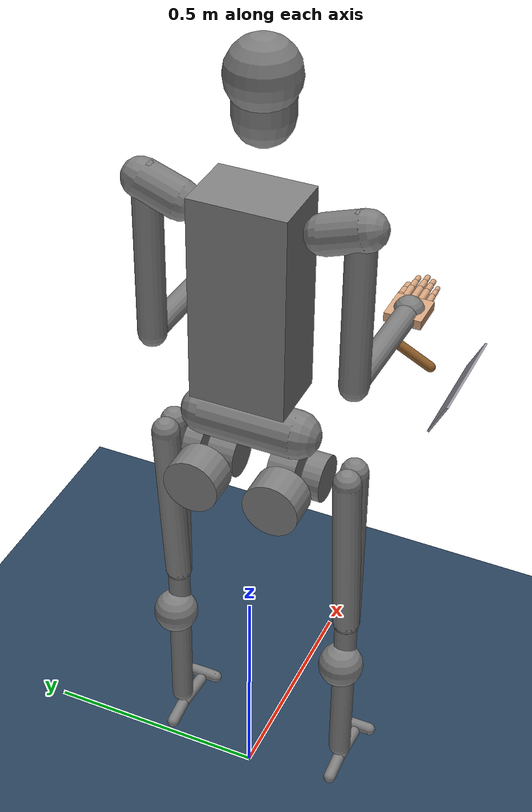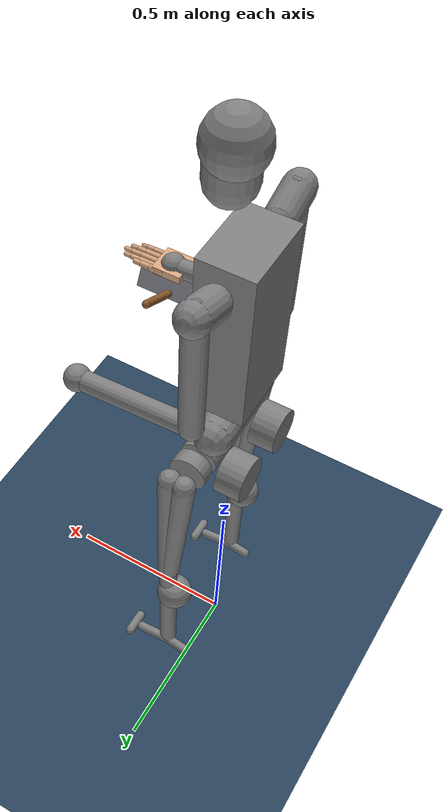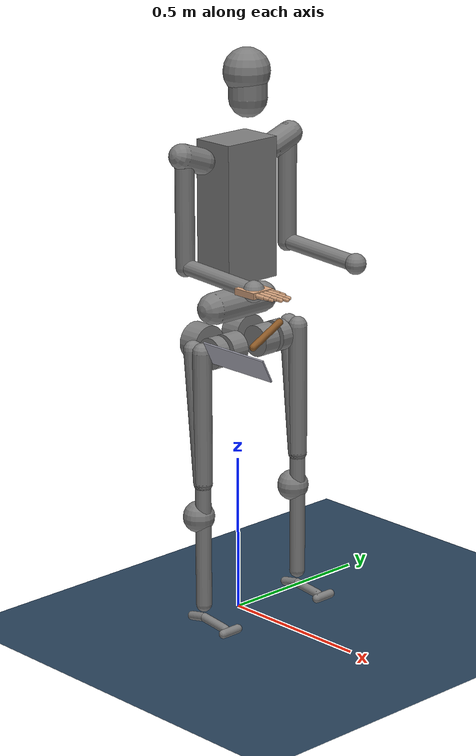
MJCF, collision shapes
<mujoco model="h1_hand scene">
  <include file="h1_hand.xml"/>

  <statistic center="0 0 1" extent="1.8"/>

  <visual>
    <headlight diffuse="0.6 0.6 0.6" ambient="0.3 0.3 0.3" specular="0 0 0"/>
    <rgba haze="0.15 0.25 0.35 1"/>
    <global azimuth="160" elevation="-20"/>
  </visual>

  <asset>
    <texture type="skybox" builtin="gradient" rgb1="0.3 0.5 0.7" rgb2="0 0 0" width="512" height="3072"/>
    <texture type="2d" name="groundplane" builtin="checker" mark="edge" rgb1="0.2 0.3 0.4" rgb2="0.1 0.2 0.3"
      markrgb="0.8 0.8 0.8" width="300" height="300"/>
    <material name="groundplane" texture="groundplane" texuniform="true" texrepeat="5 5" reflectance="0.2"/>
    <material name="steel" rgba="0.6 0.6 0.65 1"/>
    <material name="wood"  rgba="0.55 0.35 0.15 1"/>
  </asset>

  <worldbody>
    <light pos="0 0 3.5" dir="0 0 -1" directional="true"/>
    <geom name="floor" size="0 0 0.05" type="plane" material="groundplane"/>

    <!-- Trowel — handle along world -Y (euler 90 0 0 maps local Z → world -Y)
         pos chosen so handle center sits at palm Y center, 2cm below palm Z -->
    <body name="trowel" pos="0.34 -0.149 1.052" euler="90 0 0">
      <freejoint/>
      <geom name="trowel_handle" type="capsule" fromto="0 0 0 0 0 0.12" size="0.011"
            material="wood" friction="1.5 0.1 0.1" condim="4" mass="0.15"/>
      <geom name="trowel_blade" type="box" size="0.125 0.04 0.0025"
            pos="0 0 0.19" material="steel" mass="0.25"/>
    </body>
  </worldbody>

  <!-- 48 qpos: H1 freejoint(7) + H1 joints(19) + finger joints(15=zeros) + trowel freejoint(7) -->
  <keyframe>
    <key name="home"
         qpos="0 0 0.98 1 0 0 0
               0 0 -0.4 0.8 -0.4 0 0 -0.4 0.8 -0.4 0 0 0 0 0 0 0 0 0
               0 0 0 0 0 0 0 0 0 0 0 0 0 0 0
               0.34 -0.149 1.052 0.707 0.707 0 0"/>
  </keyframe>
</mujoco>

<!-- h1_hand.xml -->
<mujoco model="h1_hand">
  <compiler angle="radian" meshdir="../h1/assets" autolimits="true"/>

  <statistic meansize="0.05"/>

  <default>
    <default class="h1">
      <joint damping="1" armature="0.1"/>
      <default class="visual">
        <geom type="mesh" contype="0" conaffinity="0" group="2" material="black"/>
      </default>
      <default class="collision">
        <geom group="3" mass="0" density="0"/>
        <default class="foot">
          <geom type="capsule" size=".014"/>
          <default class="foot1">
            <geom fromto="-.035 0 -0.056 .02 0 -0.045"/>
          </default>
          <default class="foot2">
            <geom fromto=".02 0 -0.045 .115 0 -0.056"/>
          </default>
          <default class="foot3">
            <geom fromto=".14 -.03 -0.056 .14 .03 -0.056"/>
          </default>
        </default>
      </default>
      <site size="0.001" rgba="0.5 0.5 0.5 0.3" group="4"/>
    </default>
  </default>

  <asset>
    <material name="black" rgba="0.1 0.1 0.1 1"/>
    <material name="white" rgba="1 1 1 1"/>

    <mesh file="pelvis.stl"/>
    <mesh file="left_hip_yaw_link.stl"/>
    <mesh file="left_hip_roll_link.stl"/>
    <mesh file="left_hip_pitch_link.stl"/>
    <mesh file="left_knee_link.stl"/>
    <mesh file="left_ankle_link.stl"/>
    <mesh file="right_hip_yaw_link.stl"/>
    <mesh file="right_hip_roll_link.stl"/>
    <mesh file="right_hip_pitch_link.stl"/>
    <mesh file="right_knee_link.stl"/>
    <mesh file="right_ankle_link.stl"/>
    <mesh file="torso_link.stl"/>
    <mesh file="left_shoulder_pitch_link.stl"/>
    <mesh file="left_shoulder_roll_link.stl"/>
    <mesh file="left_shoulder_yaw_link.stl"/>
    <mesh file="left_elbow_link.stl"/>
    <mesh file="right_shoulder_pitch_link.stl"/>
    <mesh file="right_shoulder_roll_link.stl"/>
    <mesh file="right_shoulder_yaw_link.stl"/>
    <mesh file="right_elbow_link.stl"/>
    <mesh file="logo_link.stl"/>
  </asset>

  <worldbody>
    <light mode="targetbodycom" target="torso_link" pos="2 0 2.5"/>
    <body name="pelvis" pos="0 0 1.06" childclass="h1">
      <inertial pos="-0.0002 4e-05 -0.04522" quat="0.498303 0.499454 -0.500496 0.501741" mass="5.39"
        diaginertia="0.0490211 0.0445821 0.00824619"/>
      <freejoint/>
      <geom class="visual" mesh="pelvis"/>
      <body name="left_hip_yaw_link" pos="0 0.0875 -0.1742">
        <inertial pos="-0.04923 0.0001 0.0072" quat="0.69699 0.219193 0.233287 0.641667" mass="2.244"
          diaginertia="0.00304494 0.00296885 0.00189201"/>
        <joint name="left_hip_yaw" axis="0 0 1" range="-0.43 0.43"/>
        <geom class="visual" mesh="left_hip_yaw_link"/>
        <geom size="0.06 0.035" pos="-0.067 0 0" quat="0.707123 0 0.70709 0" type="cylinder" class="collision"/>
        <body name="left_hip_roll_link" pos="0.039468 0 0">
          <inertial pos="-0.0058 -0.00319 -9e-05" quat="0.0438242 0.70721 -0.0729075 0.701867" mass="2.232"
            diaginertia="0.00243264 0.00225325 0.00205492"/>
          <joint name="left_hip_roll" axis="1 0 0" range="-0.43 0.43"/>
          <geom class="visual" mesh="left_hip_roll_link"/>
          <geom class="collision" type="cylinder" size="0.05 0.03" quat="1 1 0 0" pos="0 -0.02 0"/>
          <body name="left_hip_pitch_link" pos="0 0.11536 0">
            <inertial pos="0.00746 -0.02346 -0.08193" quat="0.979828 0.0513522 -0.0169854 -0.192382" mass="4.152"
              diaginertia="0.0829503 0.0821457 0.00510909"/>
            <joint name="left_hip_pitch" axis="0 1 0" range="-1.57 1.57"/>
            <geom class="visual" mesh="left_hip_pitch_link"/>
            <geom class="collision" type="capsule" size="0.03" fromto="0.02 0 -0.4 -0.02 0 0.02"/>
            <geom class="collision" type="capsule" size="0.03" fromto="0.02 0 -0.4 0.02 0 0.02"/>
            <geom class="collision" type="cylinder" size="0.05 0.02" quat="1 1 0 0" pos="0 -0.07 0"/>
            <body name="left_knee_link" pos="0 0 -0.4">
              <inertial pos="-0.00136 -0.00512 -0.1384" quat="0.626132 -0.034227 -0.0416277 0.777852" mass="1.721"
                diaginertia="0.0125237 0.0123104 0.0019428"/>
              <joint name="left_knee" axis="0 1 0" range="-0.26 2.05"/>
              <geom class="visual" mesh="left_knee_link"/>
              <geom class="collision" type="capsule" size="0.025" fromto="0.02 0 -0.4 0.02 0 0"/>
              <geom class="collision" type="sphere" size="0.05" pos="0 0 -0.115"/>
              <body name="left_ankle_link" pos="0 0 -0.4">
                <inertial pos="0.06722 0.00015 -0.04497" quat="0.489101 0.503197 0.565782 0.432972" mass="0.446"
                  diaginertia="0.00220848 0.00218961 0.000214202"/>
                <joint name="left_ankle" axis="0 1 0" range="-0.87 0.52"/>
                <geom class="visual" mesh="left_ankle_link"/>
                <geom class="foot1"/>
                <geom class="foot2"/>
                <geom class="foot3"/>
              </body>
            </body>
          </body>
        </body>
      </body>
      <body name="right_hip_yaw_link" pos="0 -0.0875 -0.1742">
        <inertial pos="-0.04923 -0.0001 0.0072" quat="0.641667 0.233287 0.219193 0.69699" mass="2.244"
          diaginertia="0.00304494 0.00296885 0.00189201"/>
        <joint name="right_hip_yaw" axis="0 0 1" range="-0.43 0.43"/>
        <geom class="visual" mesh="right_hip_yaw_link"/>
        <geom size="0.06 0.035" pos="-0.067 0 0" quat="0.707123 0 0.70709 0" type="cylinder" class="collision"/>
        <body name="right_hip_roll_link" pos="0.039468 0 0">
          <inertial pos="-0.0058 0.00319 -9e-05" quat="-0.0438242 0.70721 0.0729075 0.701867" mass="2.232"
            diaginertia="0.00243264 0.00225325 0.00205492"/>
          <joint name="right_hip_roll" axis="1 0 0" range="-0.43 0.43"/>
          <geom class="visual" mesh="right_hip_roll_link"/>
          <geom class="collision" type="cylinder" size="0.05 0.03" quat="1 1 0 0" pos="0 0.02 0"/>
          <body name="right_hip_pitch_link" pos="0 -0.11536 0">
            <inertial pos="0.00746 0.02346 -0.08193" quat="0.979828 -0.0513522 -0.0169854 0.192382" mass="4.152"
              diaginertia="0.0829503 0.0821457 0.00510909"/>
            <joint name="right_hip_pitch" axis="0 1 0" range="-1.57 1.57"/>
            <geom class="visual" mesh="right_hip_pitch_link"/>
            <geom class="collision" type="capsule" size="0.03" fromto="0.02 0 -0.4 -0.02 0 0.02"/>
            <geom class="collision" type="capsule" size="0.03" fromto="0.02 0 -0.4 0.02 0 0.02"/>
            <geom class="collision" type="cylinder" size="0.05 0.02" quat="1 1 0 0" pos="0 0.07 0"/>
            <body name="right_knee_link" pos="0 0 -0.4">
              <inertial pos="-0.00136 0.00512 -0.1384" quat="0.777852 -0.0416277 -0.034227 0.626132" mass="1.721"
                diaginertia="0.0125237 0.0123104 0.0019428"/>
              <joint name="right_knee" axis="0 1 0" range="-0.26 2.05"/>
              <geom class="visual" mesh="right_knee_link"/>
              <geom class="collision" type="capsule" size="0.025" fromto="0.02 0 -0.4 0.02 0 0"/>
              <geom class="collision" type="sphere" size="0.05" pos="0 0 -0.115"/>
              <body name="right_ankle_link" pos="0 0 -0.4">
                <inertial pos="0.06722 -0.00015 -0.04497" quat="0.432972 0.565782 0.503197 0.489101" mass="0.446"
                  diaginertia="0.00220848 0.00218961 0.000214202"/>
                <joint name="right_ankle" axis="0 1 0" range="-0.87 0.52"/>
                <geom class="visual" mesh="right_ankle_link"/>
                <geom class="foot1"/>
                <geom class="foot2"/>
                <geom class="foot3"/>
              </body>
            </body>
          </body>
        </body>
      </body>
      <body name="torso_link">
        <inertial pos="0.000489 0.002797 0.20484" quat="0.999989 -0.00130808 -0.00282289 -0.00349105" mass="17.789"
          diaginertia="0.487315 0.409628 0.127837"/>
        <joint name="torso" axis="0 0 1" range="-2.35 2.35"/>
        <geom class="visual" mesh="torso_link"/>
        <geom class="visual" material="white" mesh="logo_link"/>
        <geom name="head" class="collision" type="capsule" size="0.06" fromto="0.05 0 0.68 0.05 0 0.6"/>
        <geom name="helmet" class="collision" type="sphere" size="0.073" pos="0.045 0 0.68"/>
        <geom name="torso" class="collision" type="box" size="0.07 0.1 0.22" pos="0 0 0.25"/>
        <geom name="hip" class="collision" type="capsule" size="0.05" fromto="0 -0.1 -0.05 0 0.1 -0.05"/>
        <site name="imu" pos="-0.04452 -0.01891 0.27756"/>
        <body name="left_shoulder_pitch_link" pos="0.0055 0.15535 0.42999" quat="0.976296 0.216438 0 0">
          <inertial pos="0.005045 0.053657 -0.015715" quat="0.814858 0.579236 -0.0201072 -0.00936488" mass="1.033"
            diaginertia="0.00129936 0.000987113 0.000858198"/>
          <joint name="left_shoulder_pitch" axis="0 1 0" range="-2.87 2.87"/>
          <geom class="visual" mesh="left_shoulder_pitch_link"/>
          <body name="left_shoulder_roll_link" pos="-0.0055 0.0565 -0.0165" quat="0.976296 -0.216438 0 0">
            <inertial pos="0.000679 0.00115 -0.094076" quat="0.732491 0.00917179 0.0766656 0.676384" mass="0.793"
              diaginertia="0.00170388 0.00158256 0.00100336"/>
            <joint name="left_shoulder_roll" axis="1 0 0" range="-0.34 3.11"/>
            <geom class="visual" mesh="left_shoulder_roll_link"/>
            <geom name="left_shoulder" class="collision" type="capsule" size="0.04"
              fromto="0 0.01 0.008 0 -0.07 -0.02"/>
            <body name="left_shoulder_yaw_link" pos="0 0 -0.1343">
              <inertial pos="0.01365 0.002767 -0.16266" quat="0.703042 -0.0331229 -0.0473362 0.708798" mass="0.839"
                diaginertia="0.00408038 0.00370367 0.000622687"/>
              <joint name="left_shoulder_yaw" axis="0 0 1" range="-1.3 4.45"/>
              <geom class="visual" mesh="left_shoulder_yaw_link"/>
              <geom class="collision" type="capsule" size="0.03" fromto="0 0 0.15 0 0 -0.2"/>
              <body name="left_elbow_link" pos="0.0185 0 -0.198">
                <inertial pos="0.15908 -0.000144 -0.015776" quat="0.0765232 0.720327 0.0853116 0.684102" mass="0.669"
                  diaginertia="0.00601829 0.00600579 0.000408305"/>
                <joint name="left_elbow" axis="0 1 0" range="-1.25 2.61"/>
                <geom class="visual" mesh="left_elbow_link"/>
                <geom class="collision" type="capsule" size="0.025" fromto="0 0 0 0.28 0 -0.015"/>
                <geom class="collision" type="sphere" size="0.033" pos="0.28 0 -0.015"/>
              </body>
            </body>
          </body>
        </body>
        <body name="right_shoulder_pitch_link" pos="0.0055 -0.15535 0.42999" quat="0.976296 -0.216438 0 0">
          <inertial pos="0.005045 -0.053657 -0.015715" quat="0.579236 0.814858 0.00936488 0.0201072" mass="1.033"
            diaginertia="0.00129936 0.000987113 0.000858198"/>
          <joint name="right_shoulder_pitch" axis="0 1 0" range="-2.87 2.87"/>
          <geom class="visual" mesh="right_shoulder_pitch_link"/>
          <body name="right_shoulder_roll_link" pos="-0.0055 -0.0565 -0.0165" quat="0.976296 0.216438 0 0">
            <inertial pos="0.000679 -0.00115 -0.094076" quat="0.676384 0.0766656 0.00917179 0.732491" mass="0.793"
              diaginertia="0.00170388 0.00158256 0.00100336"/>
            <joint name="right_shoulder_roll" axis="1 0 0" range="-3.11 0.34"/>
            <geom class="visual" mesh="right_shoulder_roll_link"/>
            <geom name="right_shoulder" class="collision" type="capsule" size="0.04"
              fromto="0 -0.01 0.008 0 0.07 -0.02"/>
            <body name="right_shoulder_yaw_link" pos="0 0 -0.1343">
              <inertial pos="0.01365 -0.002767 -0.16266" quat="0.708798 -0.0473362 -0.0331229 0.703042" mass="0.839"
                diaginertia="0.00408038 0.00370367 0.000622687"/>
              <joint name="right_shoulder_yaw" axis="0 0 1" range="-4.45 1.3"/>
              <geom class="visual" mesh="right_shoulder_yaw_link"/>
              <geom class="collision" type="capsule" size="0.03" fromto="0 0 0.15 0 0 -0.2"/>
              <body name="right_elbow_link" pos="0.0185 0 -0.198">
                <inertial pos="0.15908 0.000144 -0.015776" quat="-0.0765232 0.720327 -0.0853116 0.684102" mass="0.669"
                  diaginertia="0.00601829 0.00600579 0.000408305"/>
                <joint name="right_elbow" axis="0 1 0" range="-1.25 2.61"/>
                <geom class="visual" mesh="right_elbow_link"/>
                <geom class="collision" type="capsule" size="0.025" fromto="0 0 0 0.28 0 -0.015"/>
                <geom class="collision" type="sphere" size="0.033" pos="0.28 0 -0.015"/>

                <!-- RIGHT HAND -->
                <body name="palm" pos="0.28 0 -0.015">
                  <geom name="palm_geom" type="box" size="0.04 0.04 0.01"
                        friction="1.5 0.1 0.1" condim="4" rgba="0.85 0.65 0.5 1"/>

                  <!-- THUMB (abducted +Y) -->
                  <body name="thumb_prox" pos="0.015 0.035 0">
                    <joint name="thumb_mcp" axis="0 1 0" range="0 1.3" armature="0.001"/>
                    <geom type="capsule" fromto="0 0 0 0.03 0 0" size="0.009"
                          friction="1.5 0.1 0.1" condim="4" solimp="0.95 0.99 0.001" rgba="0.85 0.65 0.5 1"/>
                    <body name="thumb_mid" pos="0.03 0 0">
                      <joint name="thumb_pip" axis="0 1 0" range="0 1.2" armature="0.001"/>
                      <geom type="capsule" fromto="0 0 0 0.025 0 0" size="0.008"
                            friction="1.5 0.1 0.1" condim="4" solimp="0.95 0.99 0.001" rgba="0.85 0.65 0.5 1"/>
                      <body name="thumb_dist" pos="0.025 0 0">
                        <joint name="thumb_dip" axis="0 1 0" range="0 1.0" armature="0.001"/>
                        <geom type="capsule" fromto="0 0 0 0.02 0 0" size="0.007"
                              friction="1.5 0.1 0.1" condim="4" solimp="0.95 0.99 0.001" rgba="0.85 0.65 0.5 1"/>
                      </body>
                    </body>
                  </body>

                  <!-- INDEX -->
                  <body name="index_prox" pos="0.04 0.025 0">
                    <joint name="index_mcp" axis="0 1 0" range="0 1.5" armature="0.001"/>
                    <geom type="capsule" fromto="0 0 0 0.04 0 0" size="0.008"
                          friction="1.5 0.1 0.1" condim="4" solimp="0.95 0.99 0.001" rgba="0.85 0.65 0.5 1"/>
                    <body name="index_mid" pos="0.04 0 0">
                      <joint name="index_pip" axis="0 1 0" range="0 1.4" armature="0.001"/>
                      <geom type="capsule" fromto="0 0 0 0.025 0 0" size="0.007"
                            friction="1.5 0.1 0.1" condim="4" solimp="0.95 0.99 0.001" rgba="0.85 0.65 0.5 1"/>
                      <body name="index_dist" pos="0.025 0 0">
                        <joint name="index_dip" axis="0 1 0" range="0 1.2" armature="0.001"/>
                        <geom type="capsule" fromto="0 0 0 0.018 0 0" size="0.006"
                              friction="1.5 0.1 0.1" condim="4" solimp="0.95 0.99 0.001" rgba="0.85 0.65 0.5 1"/>
                      </body>
                    </body>
                  </body>

                  <!-- MIDDLE (longest) -->
                  <body name="middle_prox" pos="0.04 0.008 0">
                    <joint name="middle_mcp" axis="0 1 0" range="0 1.5" armature="0.001"/>
                    <geom type="capsule" fromto="0 0 0 0.045 0 0" size="0.008"
                          friction="1.5 0.1 0.1" condim="4" solimp="0.95 0.99 0.001" rgba="0.85 0.65 0.5 1"/>
                    <body name="middle_mid" pos="0.045 0 0">
                      <joint name="middle_pip" axis="0 1 0" range="0 1.4" armature="0.001"/>
                      <geom type="capsule" fromto="0 0 0 0.028 0 0" size="0.007"
                            friction="1.5 0.1 0.1" condim="4" solimp="0.95 0.99 0.001" rgba="0.85 0.65 0.5 1"/>
                      <body name="middle_dist" pos="0.028 0 0">
                        <joint name="middle_dip" axis="0 1 0" range="0 1.2" armature="0.001"/>
                        <geom type="capsule" fromto="0 0 0 0.020 0 0" size="0.006"
                              friction="1.5 0.1 0.1" condim="4" solimp="0.95 0.99 0.001" rgba="0.85 0.65 0.5 1"/>
                      </body>
                    </body>
                  </body>

                  <!-- RING -->
                  <body name="ring_prox" pos="0.04 -0.008 0">
                    <joint name="ring_mcp" axis="0 1 0" range="0 1.5" armature="0.001"/>
                    <geom type="capsule" fromto="0 0 0 0.04 0 0" size="0.008"
                          friction="1.5 0.1 0.1" condim="4" solimp="0.95 0.99 0.001" rgba="0.85 0.65 0.5 1"/>
                    <body name="ring_mid" pos="0.04 0 0">
                      <joint name="ring_pip" axis="0 1 0" range="0 1.4" armature="0.001"/>
                      <geom type="capsule" fromto="0 0 0 0.025 0 0" size="0.007"
                            friction="1.5 0.1 0.1" condim="4" solimp="0.95 0.99 0.001" rgba="0.85 0.65 0.5 1"/>
                      <body name="ring_dist" pos="0.025 0 0">
                        <joint name="ring_dip" axis="0 1 0" range="0 1.2" armature="0.001"/>
                        <geom type="capsule" fromto="0 0 0 0.018 0 0" size="0.006"
                              friction="1.5 0.1 0.1" condim="4" solimp="0.95 0.99 0.001" rgba="0.85 0.65 0.5 1"/>
                      </body>
                    </body>
                  </body>

                  <!-- PINKY (shorter) -->
                  <body name="pinky_prox" pos="0.035 -0.025 0">
                    <joint name="pinky_mcp" axis="0 1 0" range="0 1.5" armature="0.001"/>
                    <geom type="capsule" fromto="0 0 0 0.033 0 0" size="0.007"
                          friction="1.5 0.1 0.1" condim="4" solimp="0.95 0.99 0.001" rgba="0.85 0.65 0.5 1"/>
                    <body name="pinky_mid" pos="0.033 0 0">
                      <joint name="pinky_pip" axis="0 1 0" range="0 1.4" armature="0.001"/>
                      <geom type="capsule" fromto="0 0 0 0.020 0 0" size="0.006"
                            friction="1.5 0.1 0.1" condim="4" solimp="0.95 0.99 0.001" rgba="0.85 0.65 0.5 1"/>
                      <body name="pinky_dist" pos="0.020 0 0">
                        <joint name="pinky_dip" axis="0 1 0" range="0 1.2" armature="0.001"/>
                        <geom type="capsule" fromto="0 0 0 0.015 0 0" size="0.005"
                              friction="1.5 0.1 0.1" condim="4" solimp="0.95 0.99 0.001" rgba="0.85 0.65 0.5 1"/>
                      </body>
                    </body>
                  </body>

                </body><!-- /palm -->
              </body>
            </body>
          </body>
        </body>
      </body>
    </body>
  </worldbody>

  <equality>
    <!-- Weld pelvis to world — H1 is not a balance controller, this is a demo arm sim -->
    <weld body1="pelvis"/>
  </equality>

  <contact>
    <exclude body1="torso_link" body2="left_shoulder_roll_link"/>
    <exclude body1="torso_link" body2="right_shoulder_roll_link"/>
  </contact>

  <actuator>
    <!-- ARM — kv adds velocity damping; without it position actuators oscillate and fall -->
    <position name="left_hip_yaw"       joint="left_hip_yaw"       kp="200" kv="20" ctrlrange="-0.43 0.43"/>
    <position name="left_hip_roll"      joint="left_hip_roll"      kp="200" kv="20" ctrlrange="-0.43 0.43"/>
    <position name="left_hip_pitch"     joint="left_hip_pitch"     kp="200" kv="20" ctrlrange="-1.57 1.57"/>
    <position name="left_knee"          joint="left_knee"          kp="200" kv="20" ctrlrange="-0.26 2.05"/>
    <position name="left_ankle"         joint="left_ankle"         kp="100" kv="10" ctrlrange="-0.87 0.52"/>
    <position name="right_hip_yaw"      joint="right_hip_yaw"      kp="200" kv="20" ctrlrange="-0.43 0.43"/>
    <position name="right_hip_roll"     joint="right_hip_roll"     kp="200" kv="20" ctrlrange="-0.43 0.43"/>
    <position name="right_hip_pitch"    joint="right_hip_pitch"    kp="200" kv="20" ctrlrange="-1.57 1.57"/>
    <position name="right_knee"         joint="right_knee"         kp="200" kv="20" ctrlrange="-0.26 2.05"/>
    <position name="right_ankle"        joint="right_ankle"        kp="100" kv="10" ctrlrange="-0.87 0.52"/>
    <position name="torso"              joint="torso"              kp="200" kv="20" ctrlrange="-2.35 2.35"/>
    <position name="left_shoulder_pitch" joint="left_shoulder_pitch" kp="50" kv="5" ctrlrange="-2.87 2.87"/>
    <position name="left_shoulder_roll"  joint="left_shoulder_roll"  kp="50" kv="5" ctrlrange="-0.34 3.11"/>
    <position name="left_shoulder_yaw"   joint="left_shoulder_yaw"   kp="20" kv="2" ctrlrange="-1.3 4.45"/>
    <position name="left_elbow"          joint="left_elbow"          kp="20" kv="2" ctrlrange="-1.25 2.61"/>
    <position name="right_shoulder_pitch" joint="right_shoulder_pitch" kp="50" kv="5" ctrlrange="-2.87 2.87"/>
    <position name="right_shoulder_roll"  joint="right_shoulder_roll"  kp="50" kv="5" ctrlrange="-3.11 0.34"/>
    <position name="right_shoulder_yaw"   joint="right_shoulder_yaw"   kp="20" kv="2" ctrlrange="-4.45 1.3"/>
    <position name="right_elbow"          joint="right_elbow"          kp="20" kv="2" ctrlrange="-1.25 2.61"/>
    <!-- FINGERS — kp=5, kv=0.5 -->
    <position name="thumb_mcp_act"  joint="thumb_mcp"   kp="5" kv="0.5" ctrlrange="0 1.3"/>
    <position name="thumb_pip_act"  joint="thumb_pip"   kp="5" kv="0.5" ctrlrange="0 1.2"/>
    <position name="thumb_dip_act"  joint="thumb_dip"   kp="5" kv="0.5" ctrlrange="0 1.0"/>
    <position name="index_mcp_act"  joint="index_mcp"   kp="5" kv="0.5" ctrlrange="0 1.5"/>
    <position name="index_pip_act"  joint="index_pip"   kp="5" kv="0.5" ctrlrange="0 1.4"/>
    <position name="index_dip_act"  joint="index_dip"   kp="5" kv="0.5" ctrlrange="0 1.2"/>
    <position name="middle_mcp_act" joint="middle_mcp"  kp="5" kv="0.5" ctrlrange="0 1.5"/>
    <position name="middle_pip_act" joint="middle_pip"  kp="5" kv="0.5" ctrlrange="0 1.4"/>
    <position name="middle_dip_act" joint="middle_dip"  kp="5" kv="0.5" ctrlrange="0 1.2"/>
    <position name="ring_mcp_act"   joint="ring_mcp"    kp="5" kv="0.5" ctrlrange="0 1.5"/>
    <position name="ring_pip_act"   joint="ring_pip"    kp="5" kv="0.5" ctrlrange="0 1.4"/>
    <position name="ring_dip_act"   joint="ring_dip"    kp="5" kv="0.5" ctrlrange="0 1.2"/>
    <position name="pinky_mcp_act"  joint="pinky_mcp"   kp="5" kv="0.5" ctrlrange="0 1.5"/>
    <position name="pinky_pip_act"  joint="pinky_pip"   kp="5" kv="0.5" ctrlrange="0 1.4"/>
    <position name="pinky_dip_act"  joint="pinky_dip"   kp="5" kv="0.5" ctrlrange="0 1.2"/>
  </actuator>
</mujoco>
